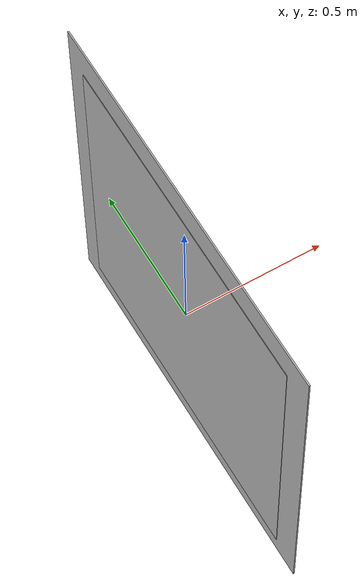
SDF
<?xml version='1.0'?>
<sdf version='1.4'>
  <model name="mark_ar_beijing01234">
    <static>true</static>
    <link name='link'>
      <pose>0 0 0 0 0 0</pose>
      <inertial>
          <mass>0.05</mass>
          <inertia>
            <ixx>0.0001</ixx>
            <ixy>0</ixy>
            <ixz>0</ixz>
            <iyy>0.0001</iyy>
            <iyz>0</iyz>
            <izz>0.0001</izz>
          </inertia>
        </inertial>
      <collision name='collision'>
        <geometry>
                <box>
                  <size>0.0005 1.4 1.4</size>
                </box>
        </geometry>
             <surface>
                   <friction>
                     <ode>
                       <mu>500.0</mu>
                       <mu2>500.0</mu2>
                     </ode>
                   </friction>
           </surface>
      </collision>

      <visual name='visual'>
        <geometry>
                <box>
                  <size>0.005 1.4 1.4</size>
                </box>
        </geometry>
      </visual>
    </link>

      <include>
      <uri>model://mark_ar_01234</uri>
       <pose>-0.01 0 0 3.1415926 0 0</pose>
    </include>
  </model>
</sdf>

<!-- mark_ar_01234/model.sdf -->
<sdf version='1.4'>

  <model name="mark_ar_track0">
    <link name='link'>
      <pose>0 0 0 0 0 0</pose>

      <collision name='collision'>
        <geometry>
                <box>
                  <size>0.0005 1.2 1.2</size>
                </box>
        </geometry>
               <surface>
                   <friction>
                     <ode>
                       <mu>500.0</mu>
                       <mu2>500.0</mu2>
                     </ode>
                   </friction>
           </surface>
      </collision>

       <inertial>
          <mass>0.05</mass>
          <inertia>
            <ixx>0.0001</ixx>
            <ixy>0</ixy>
            <ixz>0</ixz>
            <iyy>0.0001</iyy>
            <iyz>0</iyz>
            <izz>0.0001</izz>
          </inertia>
        </inertial>

      <visual name='visual'>
        <geometry>
                <box>
                  <size>0.002 1.2 1.2</size>
                </box>
        </geometry>

        <material>
          <script>
            <uri>model://mark_ar_01234/materials/scripts</uri>
            <uri>model://mark_ar_01234/materials/textures</uri>
            <name>Mark_ar_01234/Diffuse</name>
          </script>
        </material>
      </visual>
    </link>
  </model>
</sdf>
